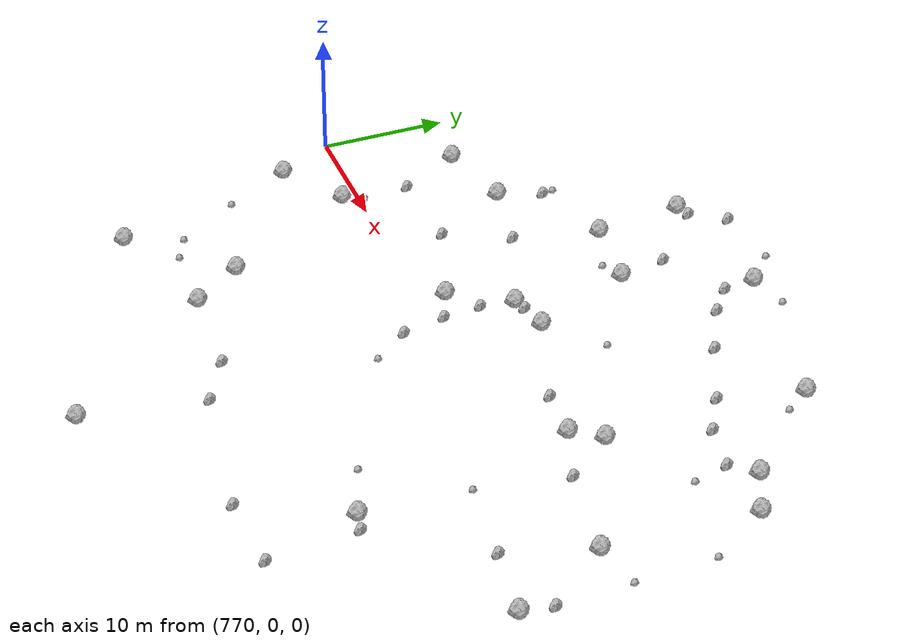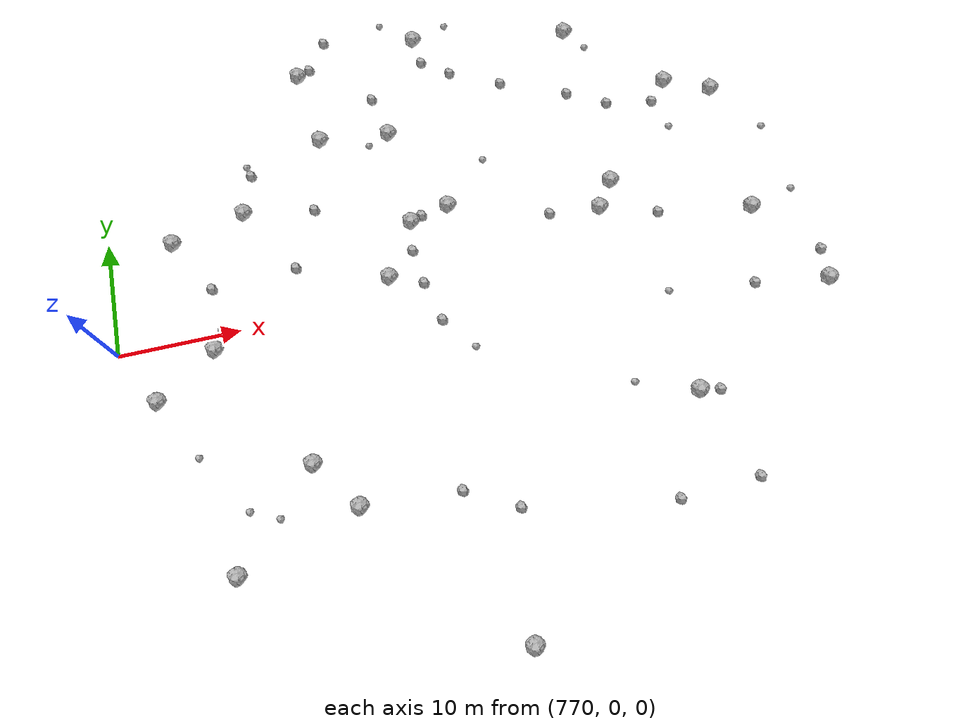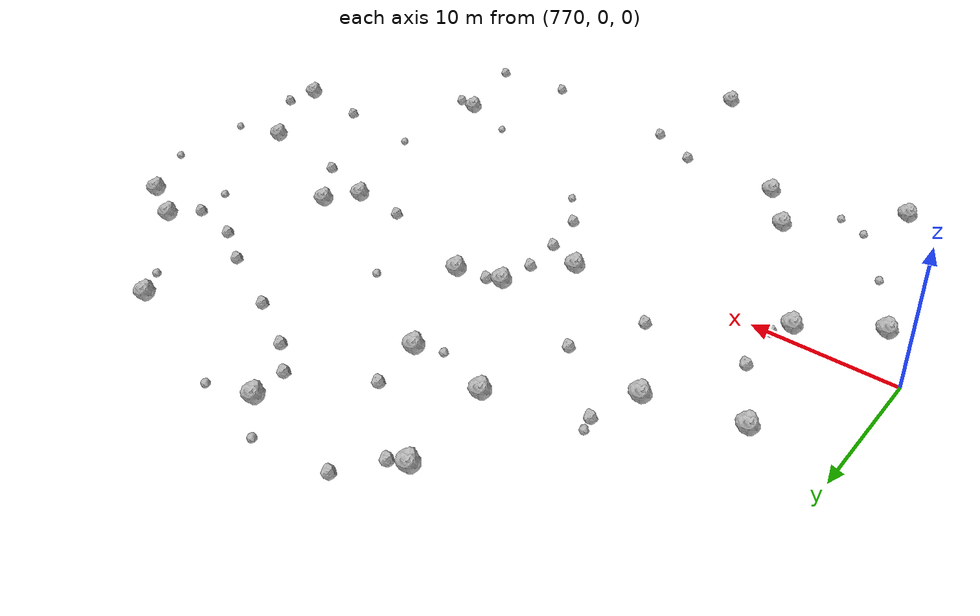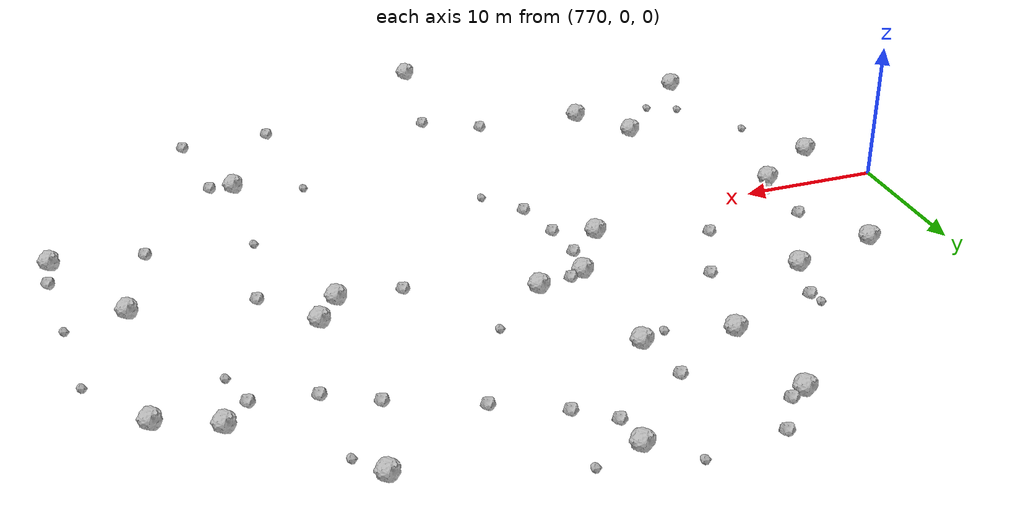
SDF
<sdf version="1.6">
 <world name="default">
  <include><uri>model://sun</uri></include>
  <model name="rock1_20_4">
   <include><uri>model://rock1</uri><pose>788.4400031539312 23.144599817233626 0.5 0 0 0</pose></include>
  </model>
  <model name="rock1_20_5">
   <include><uri>model://rock1</uri><pose>820.9814338275417 15.419478712699714 0.5 0 0 0</pose></include>
  </model>
  <model name="rock1_20_6">
   <include><uri>model://rock1</uri><pose>813.4167631605113 6.5940518076264 0.5 0 0 0</pose></include>
  </model>
  <model name="rock1_20_7">
   <include><uri>model://rock1</uri><pose>811.804880198772 4.314936674904416 0.5 0 0 0</pose></include>
  </model>
  <model name="rock1_20_8">
   <include><uri>model://rock1</uri><pose>799.0471988846874 7.349622519185054 0.5 0 0 0</pose></include>
  </model>
  <model name="rock1_20_9">
   <include><uri>model://rock1</uri><pose>789.3287313111052 16.114457121966034 0.5 0 0 0</pose></include>
  </model>
  <model name="rock1_20_10">
   <include><uri>model://rock1</uri><pose>787.0835162410722 -16.1753523519699 0.5 0 0 0</pose></include>
  </model>
  <model name="rock1_20_11">
   <include><uri>model://rock1</uri><pose>781.7415074504571 10.44582866009533 0.5 0 0 0</pose></include>
  </model>
  <model name="rock1_20_12">
   <include><uri>model://rock1</uri><pose>795.6555277159136 6.495996816890312 0.5 0 0 0</pose></include>
  </model>
  <model name="rock1_20_13">
   <include><uri>model://rock1</uri><pose>824.6461742981479 1.5277085896383582 0.5 0 0 0</pose></include>
  </model>
  <model name="rock1_20_14">
   <include><uri>model://rock1</uri><pose>777.827941228494 -1.283359491921349 0.5 0 0 0</pose></include>
  </model>
  <model name="rock1_20_15">
   <include><uri>model://rock1</uri><pose>777.3287050142036 -19.239186625078922 0.5 0 0 0</pose></include>
  </model>
  <model name="rock1_20_16">
   <include><uri>model://rock1</uri><pose>772.8384069934997 -4.605762711249838 0.5 0 0 0</pose></include>
  </model>
  <model name="rock1_20_17">
   <include><uri>model://rock1</uri><pose>784.1189446182095 -12.177408940825302 0.5 0 0 0</pose></include>
  </model>
  <model name="rock1_20_18">
   <include><uri>model://rock1</uri><pose>792.8402861820132 1.8752366600799597 0.5 0 0 0</pose></include>
  </model>
  <model name="rock1_20_19">
   <include><uri>model://rock1</uri><pose>775.467716087198 8.911259527423553 0.5 0 0 0</pose></include>
  </model>
  <model name="rock1_20_20">
   <include><uri>model://rock1</uri><pose>824.8773791623476 13.718157030467594 0.5 0 0 0</pose></include>
  </model>
  <model name="rock1_20_21">
   <include><uri>model://rock1</uri><pose>828.8013191316244 -6.203364517946056 0.5 0 0 0</pose></include>
  </model>
  <model name="rock1_20_22">
   <include><uri>model://rock1</uri><pose>813.467749486666 22.625734230905586 0.5 0 0 0</pose></include>
  </model>
  <model name="rock1_20_23">
   <include><uri>model://rock1</uri><pose>799.5091396174425 24.78827596736496 0.5 0 0 0</pose></include>
  </model>
  <model name="rock1_20_24">
   <include><uri>model://rock1</uri><pose>795.3785495425368 15.465200888852806 0.5 0 0 0</pose></include>
  </model>
  <model name="rock1_20_25">
   <include><uri>model://rock1</uri><pose>815.2242619660838 -13.08963052701339 0.5 0 0 0</pose></include>
  </model>
  <model name="rock1_20_26">
   <include><uri>model://rock1</uri><pose>797.672569414284 -28.724468252466295 0.5 0 0 0</pose></include>
  </model>
  <model name="rock2_20_0">
   <include><uri>model://rock2</uri><pose>802.0320428700973 20.554273901603416 0.3 0 0 0</pose></include>
  </model>
  <model name="rock2_20_1">
   <include><uri>model://rock2</uri><pose>787.7098573843701 9.450070443121191 0.3 0 0 0</pose></include>
  </model>
  <model name="rock2_20_2">
   <include><uri>model://rock2</uri><pose>829.0630911359582 -3.597550557988111 0.3 0 0 0</pose></include>
  </model>
  <model name="rock2_20_3">
   <include><uri>model://rock2</uri><pose>796.6234298661036 6.920080245812649 0.3 0 0 0</pose></include>
  </model>
  <model name="rock2_20_4">
   <include><uri>model://rock2</uri><pose>815.2300612413036 14.303221898656318 0.3 0 0 0</pose></include>
  </model>
  <model name="rock2_20_5">
   <include><uri>model://rock2</uri><pose>785.308401961242 4.414931042343078 0.3 0 0 0</pose></include>
  </model>
  <model name="rock2_20_6">
   <include><uri>model://rock2</uri><pose>816.588258995384 2.781550069303286 0.3 0 0 0</pose></include>
  </model>
  <model name="rock2_20_7">
   <include><uri>model://rock2</uri><pose>791.2857414743324 26.328809377695812 0.3 0 0 0</pose></include>
  </model>
  <model name="rock2_20_8">
   <include><uri>model://rock2</uri><pose>799.0521018053538 -18.946941594215676 0.3 0 0 0</pose></include>
  </model>
  <model name="rock2_20_9">
   <include><uri>model://rock2</uri><pose>782.8222571447458 13.928612014220917 0.3 0 0 0</pose></include>
  </model>
  <model name="rock2_20_10">
   <include><uri>model://rock2</uri><pose>789.5328526270994 23.670403360996104 0.3 0 0 0</pose></include>
  </model>
  <model name="rock2_20_11">
   <include><uri>model://rock2</uri><pose>817.6851203474514 -20.71821445914155 0.3 0 0 0</pose></include>
  </model>
  <model name="rock2_20_12">
   <include><uri>model://rock2</uri><pose>819.2823689459775 13.604281932702072 0.3 0 0 0</pose></include>
  </model>
  <model name="rock2_20_13">
   <include><uri>model://rock2</uri><pose>806.3153347735094 18.45485726163549 0.3 0 0 0</pose></include>
  </model>
  <model name="rock2_20_14">
   <include><uri>model://rock2</uri><pose>778.6034317651444 0.13004462785336557 0.3 0 0 0</pose></include>
  </model>
  <model name="rock2_20_15">
   <include><uri>model://rock2</uri><pose>795.2110984457762 3.839269203712341 0.3 0 0 0</pose></include>
  </model>
  <model name="rock2_20_16">
   <include><uri>model://rock2</uri><pose>811.9693823585142 16.074966762039537 0.3 0 0 0</pose></include>
  </model>
  <model name="rock2_20_17">
   <include><uri>model://rock2</uri><pose>795.5603609881204 0.747539505127456 0.3 0 0 0</pose></include>
  </model>
  <model name="rock2_20_18">
   <include><uri>model://rock2</uri><pose>811.1372251778595 -21.009287594300083 0.3 0 0 0</pose></include>
  </model>
  <model name="rock2_20_19">
   <include><uri>model://rock2</uri><pose>796.3786577495384 -2.7806378769340085 0.3 0 0 0</pose></include>
  </model>
  <model name="rock2_20_20">
   <include><uri>model://rock2</uri><pose>816.8568597375652 -13.427826277916921 0.3 0 0 0</pose></include>
  </model>
  <model name="rock2_20_21">
   <include><uri>model://rock2</uri><pose>794.9761464801726 -16.74142970716701 0.3 0 0 0</pose></include>
  </model>
  <model name="rock2_20_22">
   <include><uri>model://rock2</uri><pose>799.7205469828358 22.25833164708495 0.3 0 0 0</pose></include>
  </model>
  <model name="rock2_20_23">
   <include><uri>model://rock2</uri><pose>778.185030446375 4.064898090288665 0.3 0 0 0</pose></include>
  </model>
  <model name="rock2_20_24">
   <include><uri>model://rock2</uri><pose>822.5941257093169 -5.30465887031221 0.3 0 0 0</pose></include>
  </model>
  <model name="rock2_20_25">
   <include><uri>model://rock2</uri><pose>807.4165007136518 4.661015336158968 0.3 0 0 0</pose></include>
  </model>
  <model name="rock2_20_26">
   <include><uri>model://rock2</uri><pose>794.5578732347773 19.3312381650762 0.3 0 0 0</pose></include>
  </model>
  <model name="rock3_20_0">
   <include><uri>model://rock3</uri><pose>802.641094664206 25.78208121665748 0.2 0 0 0</pose></include>
  </model>
  <model name="rock3_20_1">
   <include><uri>model://rock3</uri><pose>820.0579564417819 10.760883961869936 0.2 0 0 0</pose></include>
  </model>
  <model name="rock3_20_2">
   <include><uri>model://rock3</uri><pose>798.5590651281259 -5.636567228078032 0.2 0 0 0</pose></include>
  </model>
  <model name="rock3_20_3">
   <include><uri>model://rock3</uri><pose>810.3525294902776 -11.357440299427846 0.2 0 0 0</pose></include>
  </model>
  <model name="rock3_20_4">
   <include><uri>model://rock3</uri><pose>814.9023868539729 20.61036886843111 0.2 0 0 0</pose></include>
  </model>
  <model name="rock3_20_5">
   <include><uri>model://rock3</uri><pose>780.9752922264768 -15.79228035494703 0.2 0 0 0</pose></include>
  </model>
  <model name="rock3_20_6">
   <include><uri>model://rock3</uri><pose>815.3577951540249 -4.446301918512301 0.2 0 0 0</pose></include>
  </model>
  <model name="rock3_20_7">
   <include><uri>model://rock3</uri><pose>778.7650413553823 -14.772488986155691 0.2 0 0 0</pose></include>
  </model>
  <model name="rock3_20_8">
   <include><uri>model://rock3</uri><pose>796.7230241763776 27.097175995785292 0.2 0 0 0</pose></include>
  </model>
  <model name="rock3_20_9">
   <include><uri>model://rock3</uri><pose>802.9869876548274 11.09986138455249 0.2 0 0 0</pose></include>
  </model>
  <model name="rock3_20_10">
   <include><uri>model://rock3</uri><pose>793.4583359343595 14.67156089394571 0.2 0 0 0</pose></include>
  </model>
  <model name="rock3_20_11">
   <include><uri>model://rock3</uri><pose>775.4698383607802 -9.80949437569754 0.2 0 0 0</pose></include>
  </model>
  <model name="rock3_20_12">
   <include><uri>model://rock3</uri><pose>828.1590864767139 8.963927682020362 0.2 0 0 0</pose></include>
  </model>
  <model name="rock3_20_13">
   <include><uri>model://rock3</uri><pose>828.582566131972 2.4381499027055327 0.2 0 0 0</pose></include>
  </model>
  <model name="rock3_20_14">
   <include><uri>model://rock3</uri><pose>782.5343825862991 14.88661816043858 0.2 0 0 0</pose></include>
  </model>
 </world>
</sdf>
